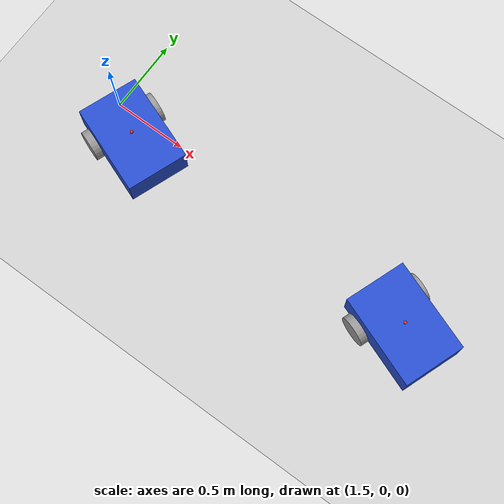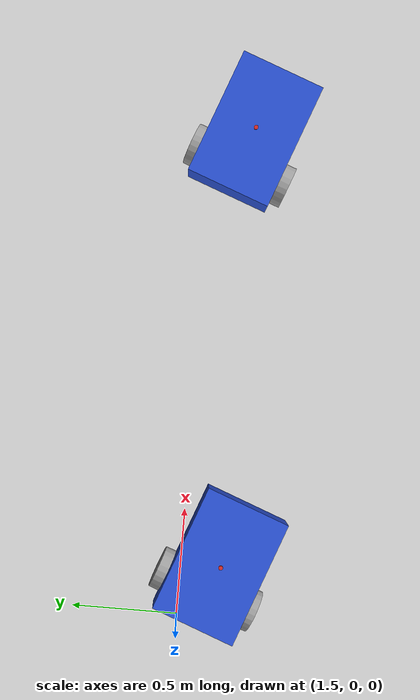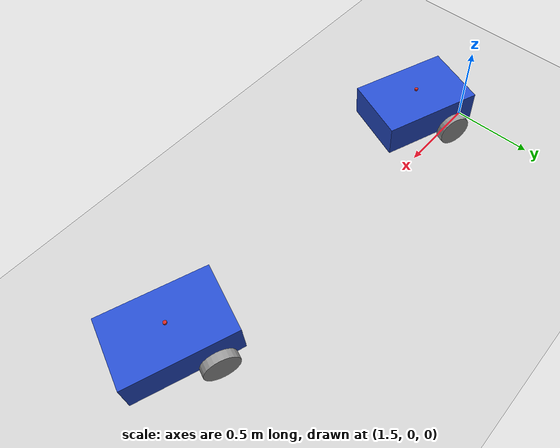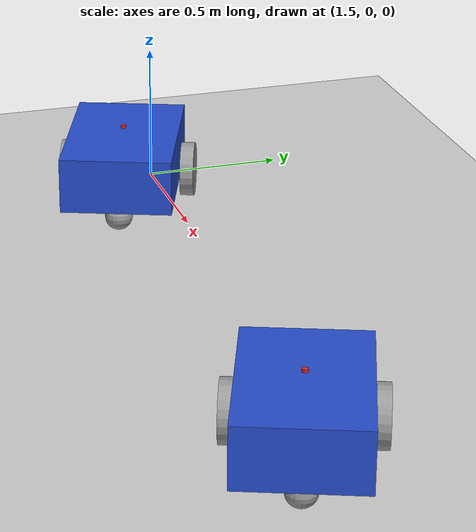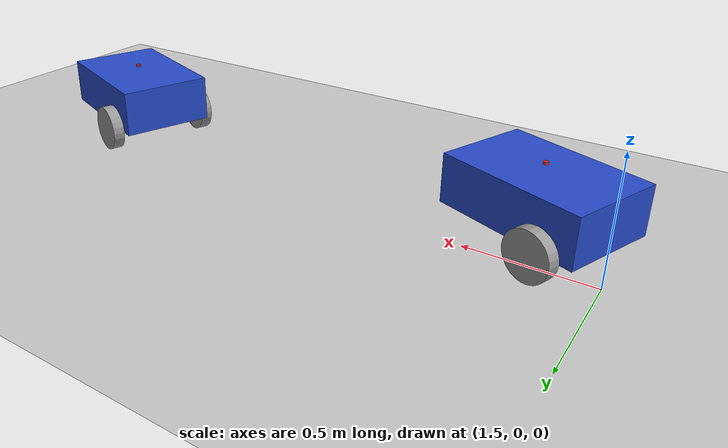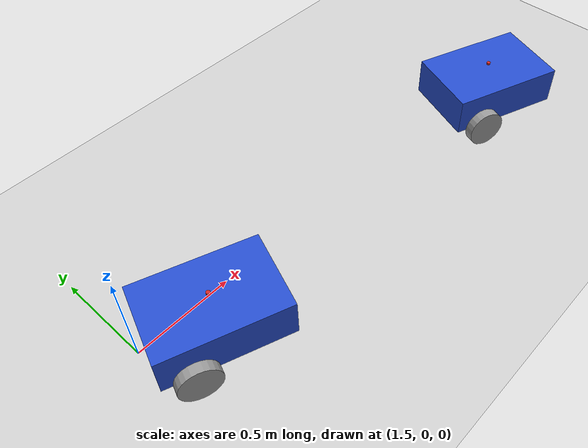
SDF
<sdf version="1.7">
 <world name="default">
  <model name="ground_plane">
   <static>1</static>
   <link name="link">
    <collision name="collision">
     <geometry><plane><normal>0 0 1</normal><size>100 100</size></plane></geometry>
     <surface>
      <contact><collide_bitmask>65535</collide_bitmask></contact>
      <friction><ode><mu>100</mu><mu2>50</mu2></ode></friction>
     </surface>
    </collision>
    <visual name="visual">
     <cast_shadows>0</cast_shadows>
     <geometry><plane><normal>0 0 1</normal><size>100 100</size></plane></geometry>
     <material>
      <script><uri>file://media/materials/scripts/gazebo.material</uri><name>Gazebo/Grey</name></script>
     </material>
    </visual>
   </link>
  </model>
  <model name="my_robot_2">
   <link name="base_footprint">
    <inertial>
     <pose>0.017857 0 0.18875 0 -0 0</pose>
     <mass>5.6</mass>
     <inertia>
      <ixx>1.34582</ixx>
      <ixy>0</ixy>
      <ixz>0.013875</ixz>
      <iyy>2.69737</iyy>
      <iyz>0</iyz>
      <izz>3.48539</izz>
     </inertia>
    </inertial>
    <collision name="base_footprint_fixed_joint_lump__base_link_collision">
     <pose>0 0 0.2 0 -0 0</pose>
     <geometry><box><size>0.6 0.4 0.2</size></box></geometry>
    </collision>
    <collision name="base_footprint_fixed_joint_lump__caster_wheel_link_collision_1">
     <pose>0.2 0 0.05 0 -0 0</pose>
     <geometry><sphere><radius>0.05</radius></sphere></geometry>
     <surface><friction><ode><mu>0.1</mu><mu2>0.1</mu2></ode></friction></surface>
    </collision>
    <collision name="base_footprint_fixed_joint_lump__lidar_link_collision_2">
     <pose>0 0 0.32 0 -0 0</pose>
     <geometry><cylinder><length>0.01</length><radius>0.01</radius></cylinder></geometry>
    </collision>
    <visual name="base_footprint_fixed_joint_lump__base_link_visual">
     <pose>0 0 0.2 0 -0 0</pose>
     <geometry><box><size>0.6 0.4 0.2</size></box></geometry>
     <material>
      <script><name>Gazebo/Blue</name><uri>file://media/materials/scripts/gazebo.material</uri></script>
     </material>
    </visual>
    <visual name="base_footprint_fixed_joint_lump__caster_wheel_link_visual_1">
     <pose>0.2 0 0.05 0 -0 0</pose>
     <geometry><sphere><radius>0.05</radius></sphere></geometry>
     <material>
      <script><name>Gazebo/Grey</name><uri>file://media/materials/scripts/gazebo.material</uri></script>
     </material>
    </visual>
    <visual name="base_footprint_fixed_joint_lump__lidar_link_visual_2">
     <pose>0 0 0.32 0 -0 0</pose>
     <geometry><cylinder><length>0.01</length><radius>0.01</radius></cylinder></geometry>
     <material>
      <script><name>Gazebo/Red</name><uri>file://media/materials/scripts/gazebo.material</uri></script>
     </material>
    </visual>
    <sensor name="laser" type="ray">
     <visualize>0</visualize>
     <update_rate>60</update_rate>
     <ray>
      <scan>
       <horizontal>
        <samples>91</samples>
        <min_angle>-3.14159</min_angle>
        <max_angle>3.14159</max_angle>
        <resolution>1</resolution>
       </horizontal>
       <vertical><samples>1</samples><min_angle>0</min_angle><max_angle>0</max_angle></vertical>
      </scan>
      <range><min>0.35</min><max>2</max></range>
     </ray>
     <plugin name="laser_controller" filename="libgazebo_ros_ray_sensor.so">
      <ros><argument>~/out:=scan</argument><namespace>robot_2</namespace></ros>
      <output_type>sensor_msgs/LaserScan</output_type>
      <frame_name>lidar_link</frame_name>
     </plugin>
     <pose>0 0 0.32 0 -0 0</pose>
    </sensor>
   </link>
   <joint name="base_left_wheel_joint" type="revolute">
    <pose relative_to="base_footprint">-0.15 0.225 0.1 0 -0 0</pose>
    <parent>base_footprint</parent>
    <child>left_wheel_link</child>
    <axis>
     <xyz>0 1 0</xyz>
     <limit><lower>-1e+16</lower><upper>1e+16</upper></limit>
     <dynamics><spring_reference>0</spring_reference><spring_stiffness>0</spring_stiffness></dynamics>
    </axis>
   </joint>
   <link name="left_wheel_link">
    <pose relative_to="base_left_wheel_joint">0 0 0 0 -0 0</pose>
    <inertial>
     <pose>0 0 0 1.5708 -0 0</pose>
     <mass>1</mass>
     <inertia>
      <ixx>0.00270833</ixx>
      <ixy>0</ixy>
      <ixz>0</ixz>
      <iyy>0.00270833</iyy>
      <iyz>0</iyz>
      <izz>0.005</izz>
     </inertia>
    </inertial>
    <collision name="left_wheel_link_collision">
     <pose>0 0 0 1.5708 -0 0</pose>
     <geometry><cylinder><length>0.05</length><radius>0.1</radius></cylinder></geometry>
    </collision>
    <visual name="left_wheel_link_visual">
     <pose>0 0 0 1.5708 -0 0</pose>
     <geometry><cylinder><length>0.05</length><radius>0.1</radius></cylinder></geometry>
     <material>
      <script><name>Gazebo/Grey</name><uri>file://media/materials/scripts/gazebo.material</uri></script>
     </material>
    </visual>
   </link>
   <joint name="base_right_wheel_joint" type="revolute">
    <pose relative_to="base_footprint">-0.15 -0.225 0.1 0 -0 0</pose>
    <parent>base_footprint</parent>
    <child>right_wheel_link</child>
    <axis>
     <xyz>0 1 0</xyz>
     <limit><lower>-1e+16</lower><upper>1e+16</upper></limit>
     <dynamics><spring_reference>0</spring_reference><spring_stiffness>0</spring_stiffness></dynamics>
    </axis>
   </joint>
   <link name="right_wheel_link">
    <pose relative_to="base_right_wheel_joint">0 0 0 0 -0 0</pose>
    <inertial>
     <pose>0 0 0 1.5708 -0 0</pose>
     <mass>1</mass>
     <inertia>
      <ixx>0.00270833</ixx>
      <ixy>0</ixy>
      <ixz>0</ixz>
      <iyy>0.00270833</iyy>
      <iyz>0</iyz>
      <izz>0.005</izz>
     </inertia>
    </inertial>
    <collision name="right_wheel_link_collision">
     <pose>0 0 0 1.5708 -0 0</pose>
     <geometry><cylinder><length>0.05</length><radius>0.1</radius></cylinder></geometry>
    </collision>
    <visual name="right_wheel_link_visual">
     <pose>0 0 0 1.5708 -0 0</pose>
     <geometry><cylinder><length>0.05</length><radius>0.1</radius></cylinder></geometry>
     <material>
      <script><name>Gazebo/Grey</name><uri>file://media/materials/scripts/gazebo.material</uri></script>
     </material>
    </visual>
   </link>
   <static>0</static>
   <plugin name="diff_drive_controller" filename="libgazebo_ros_diff_drive.so">
    <update_rate>50</update_rate>
    <left_joint>base_left_wheel_joint</left_joint>
    <right_joint>base_right_wheel_joint</right_joint>
    <wheel_separation>0.45</wheel_separation>
    <wheel_diameter>0.2</wheel_diameter>
    <command_topic>cmd_vel</command_topic>
    <publish_odom>1</publish_odom>
    <publish_odom_tf>1</publish_odom_tf>
    <publish_wheel_tf>1</publish_wheel_tf>
    <odometry_topic>odom</odometry_topic>
    <odometry_frame>odom</odometry_frame>
    <robot_base_frame>base_footprint</robot_base_frame>
    <ros><namespace>robot_2</namespace></ros>
   </plugin>
   <pose>1.78858 -0.180362 -5.6e-05 -0.000249 -1.7e-05 -0.361364</pose>
  </model>
  <model name="my_robot_3">
   <link name="base_footprint">
    <inertial>
     <pose>0.017857 0 0.18875 0 -0 0</pose>
     <mass>5.6</mass>
     <inertia>
      <ixx>1.34582</ixx>
      <ixy>0</ixy>
      <ixz>0.013875</ixz>
      <iyy>2.69737</iyy>
      <iyz>0</iyz>
      <izz>3.48539</izz>
     </inertia>
    </inertial>
    <collision name="base_footprint_fixed_joint_lump__base_link_collision">
     <pose>0 0 0.2 0 -0 0</pose>
     <geometry><box><size>0.6 0.4 0.2</size></box></geometry>
    </collision>
    <collision name="base_footprint_fixed_joint_lump__caster_wheel_link_collision_1">
     <pose>0.2 0 0.05 0 -0 0</pose>
     <geometry><sphere><radius>0.05</radius></sphere></geometry>
     <surface><friction><ode><mu>0.1</mu><mu2>0.1</mu2></ode></friction></surface>
    </collision>
    <collision name="base_footprint_fixed_joint_lump__lidar_link_collision_2">
     <pose>0 0 0.32 0 -0 0</pose>
     <geometry><cylinder><length>0.01</length><radius>0.01</radius></cylinder></geometry>
    </collision>
    <visual name="base_footprint_fixed_joint_lump__base_link_visual">
     <pose>0 0 0.2 0 -0 0</pose>
     <geometry><box><size>0.6 0.4 0.2</size></box></geometry>
     <material>
      <script><name>Gazebo/Blue</name><uri>file://media/materials/scripts/gazebo.material</uri></script>
     </material>
    </visual>
    <visual name="base_footprint_fixed_joint_lump__caster_wheel_link_visual_1">
     <pose>0.2 0 0.05 0 -0 0</pose>
     <geometry><sphere><radius>0.05</radius></sphere></geometry>
     <material>
      <script><name>Gazebo/Grey</name><uri>file://media/materials/scripts/gazebo.material</uri></script>
     </material>
    </visual>
    <visual name="base_footprint_fixed_joint_lump__lidar_link_visual_2">
     <pose>0 0 0.32 0 -0 0</pose>
     <geometry><cylinder><length>0.01</length><radius>0.01</radius></cylinder></geometry>
     <material>
      <script><name>Gazebo/Red</name><uri>file://media/materials/scripts/gazebo.material</uri></script>
     </material>
    </visual>
    <sensor name="laser" type="ray">
     <visualize>0</visualize>
     <update_rate>60</update_rate>
     <ray>
      <scan>
       <horizontal>
        <samples>91</samples>
        <min_angle>-3.14159</min_angle>
        <max_angle>3.14159</max_angle>
        <resolution>1</resolution>
       </horizontal>
       <vertical><samples>1</samples><min_angle>0</min_angle><max_angle>0</max_angle></vertical>
      </scan>
      <range><min>0.35</min><max>2</max></range>
     </ray>
     <plugin name="laser_controller" filename="libgazebo_ros_ray_sensor.so">
      <ros><argument>~/out:=scan</argument><namespace>robot_3</namespace></ros>
      <output_type>sensor_msgs/LaserScan</output_type>
      <frame_name>lidar_link</frame_name>
     </plugin>
     <pose>0 0 0.32 0 -0 0</pose>
    </sensor>
   </link>
   <joint name="base_left_wheel_joint" type="revolute">
    <pose relative_to="base_footprint">-0.15 0.225 0.1 0 -0 0</pose>
    <parent>base_footprint</parent>
    <child>left_wheel_link</child>
    <axis>
     <xyz>0 1 0</xyz>
     <limit><lower>-1e+16</lower><upper>1e+16</upper></limit>
     <dynamics><spring_reference>0</spring_reference><spring_stiffness>0</spring_stiffness></dynamics>
    </axis>
   </joint>
   <link name="left_wheel_link">
    <pose relative_to="base_left_wheel_joint">0 0 0 0 -0 0</pose>
    <inertial>
     <pose>0 0 0 1.5708 -0 0</pose>
     <mass>1</mass>
     <inertia>
      <ixx>0.00270833</ixx>
      <ixy>0</ixy>
      <ixz>0</ixz>
      <iyy>0.00270833</iyy>
      <iyz>0</iyz>
      <izz>0.005</izz>
     </inertia>
    </inertial>
    <collision name="left_wheel_link_collision">
     <pose>0 0 0 1.5708 -0 0</pose>
     <geometry><cylinder><length>0.05</length><radius>0.1</radius></cylinder></geometry>
    </collision>
    <visual name="left_wheel_link_visual">
     <pose>0 0 0 1.5708 -0 0</pose>
     <geometry><cylinder><length>0.05</length><radius>0.1</radius></cylinder></geometry>
     <material>
      <script><name>Gazebo/Grey</name><uri>file://media/materials/scripts/gazebo.material</uri></script>
     </material>
    </visual>
   </link>
   <joint name="base_right_wheel_joint" type="revolute">
    <pose relative_to="base_footprint">-0.15 -0.225 0.1 0 -0 0</pose>
    <parent>base_footprint</parent>
    <child>right_wheel_link</child>
    <axis>
     <xyz>0 1 0</xyz>
     <limit><lower>-1e+16</lower><upper>1e+16</upper></limit>
     <dynamics><spring_reference>0</spring_reference><spring_stiffness>0</spring_stiffness></dynamics>
    </axis>
   </joint>
   <link name="right_wheel_link">
    <pose relative_to="base_right_wheel_joint">0 0 0 0 -0 0</pose>
    <inertial>
     <pose>0 0 0 1.5708 -0 0</pose>
     <mass>1</mass>
     <inertia>
      <ixx>0.00270833</ixx>
      <ixy>0</ixy>
      <ixz>0</ixz>
      <iyy>0.00270833</iyy>
      <iyz>0</iyz>
      <izz>0.005</izz>
     </inertia>
    </inertial>
    <collision name="right_wheel_link_collision">
     <pose>0 0 0 1.5708 -0 0</pose>
     <geometry><cylinder><length>0.05</length><radius>0.1</radius></cylinder></geometry>
    </collision>
    <visual name="right_wheel_link_visual">
     <pose>0 0 0 1.5708 -0 0</pose>
     <geometry><cylinder><length>0.05</length><radius>0.1</radius></cylinder></geometry>
     <material>
      <script><name>Gazebo/Grey</name><uri>file://media/materials/scripts/gazebo.material</uri></script>
     </material>
    </visual>
   </link>
   <static>0</static>
   <plugin name="diff_drive_controller" filename="libgazebo_ros_diff_drive.so">
    <update_rate>50</update_rate>
    <left_joint>base_left_wheel_joint</left_joint>
    <right_joint>base_right_wheel_joint</right_joint>
    <wheel_separation>0.45</wheel_separation>
    <wheel_diameter>0.2</wheel_diameter>
    <command_topic>cmd_vel</command_topic>
    <publish_odom>1</publish_odom>
    <publish_odom_tf>1</publish_odom_tf>
    <publish_wheel_tf>1</publish_wheel_tf>
    <odometry_topic>odom</odometry_topic>
    <odometry_frame>odom</odometry_frame>
    <robot_base_frame>base_footprint</robot_base_frame>
    <ros><namespace>robot_3</namespace></ros>
   </plugin>
   <pose>3.78976 -0.179741 1.1e-05 -5.6e-05 5.3e-05 -0.359838</pose>
  </model>
 </world>
</sdf>
